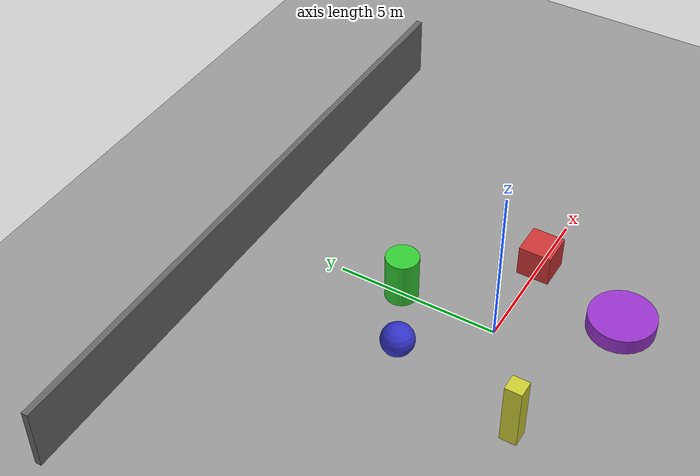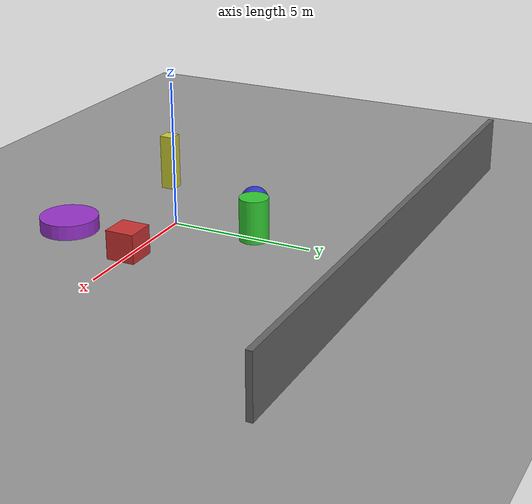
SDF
<?xml version="1.0" ?>
<sdf version="1.8">
  <world name="navigation_testbed">

    <!-- Physics Configuration -->
    <physics name="custom_physics" type="ode">
      <max_step_size>0.001</max_step_size>
      <real_time_factor>1.0</real_time_factor>
      <real_time_update_rate>1000</real_time_update_rate>
      <ode>
        <solver>
          <type>quick</type>
          <iters>50</iters>
          <sor>1.3</sor>
        </solver>
        <constraints>
          <cfm>0.0</cfm>
          <erp>0.2</erp>
          <contact_max_correcting_vel>100</contact_max_correcting_vel>
          <contact_surface_layer>0.001</contact_surface_layer>
        </constraints>
      </ode>
    </physics>

    <!-- Required System Plugins -->
    <plugin filename="gz-sim-physics-system"
            name="gz::sim::systems::Physics"/>
    <plugin filename="gz-sim-scene-broadcaster-system"
            name="gz::sim::systems::SceneBroadcaster"/>
    <plugin filename="gz-sim-user-commands-system"
            name="gz::sim::systems::UserCommands"/>
    <plugin filename="gz-sim-sensors-system"
            name="gz::sim::systems::Sensors">
      <render_engine>ogre2</render_engine>
    </plugin>

    <!-- Sun Light with Shadows -->
    <light type="directional" name="sun">
      <cast_shadows>true</cast_shadows>
      <pose>0 0 10 0 0 0</pose>
      <diffuse>0.9 0.9 0.9 1</diffuse>
      <specular>0.3 0.3 0.3 1</specular>
      <direction>-0.5 0.5 -1</direction>
      <attenuation>
        <range>1000</range>
        <constant>0.9</constant>
        <linear>0.01</linear>
        <quadratic>0.001</quadratic>
      </attenuation>
    </light>

    <!-- Ambient Fill Light -->
    <light type="point" name="ambient_fill">
      <cast_shadows>false</cast_shadows>
      <pose>0 0 8 0 0 0</pose>
      <diffuse>0.2 0.2 0.2 1</diffuse>
      <specular>0.0 0.0 0.0 1</specular>
      <attenuation>
        <range>30</range>
        <constant>0.5</constant>
        <linear>0.01</linear>
        <quadratic>0.001</quadratic>
      </attenuation>
    </light>

    <!-- Ground Plane -->
    <model name="ground_plane">
      <static>true</static>
      <link name="link">
        <collision name="collision">
          <geometry>
            <plane>
              <normal>0 0 1</normal>
              <size>50 50</size>
            </plane>
          </geometry>
          <surface>
            <friction>
              <ode>
                <mu>1.0</mu>
                <mu2>1.0</mu2>
              </ode>
            </friction>
            <bounce>
              <restitution_coefficient>0.1</restitution_coefficient>
              <threshold>0.01</threshold>
            </bounce>
          </surface>
        </collision>
        <visual name="visual">
          <geometry>
            <plane>
              <normal>0 0 1</normal>
              <size>50 50</size>
            </plane>
          </geometry>
          <material>
            <ambient>0.6 0.6 0.6 1</ambient>
            <diffuse>0.6 0.6 0.6 1</diffuse>
            <specular>0.1 0.1 0.1 1</specular>
          </material>
        </visual>
      </link>
    </model>

    <!-- Obstacle 1: Red Box -->
    <model name="obstacle_box_red">
      <static>true</static>
      <pose>3 0 0.5 0 0 0</pose>
      <link name="link">
        <collision name="collision">
          <geometry>
            <box><size>1 1 1</size></box>
          </geometry>
        </collision>
        <visual name="visual">
          <geometry>
            <box><size>1 1 1</size></box>
          </geometry>
          <material>
            <ambient>0.8 0.2 0.2 1</ambient>
            <diffuse>0.8 0.2 0.2 1</diffuse>
            <specular>0.5 0.5 0.5 1</specular>
          </material>
        </visual>
      </link>
    </model>

    <!-- Obstacle 2: Green Cylinder -->
    <model name="obstacle_cylinder_green">
      <static>true</static>
      <pose>0 3 0.75 0 0 0</pose>
      <link name="link">
        <collision name="collision">
          <geometry>
            <cylinder>
              <radius>0.5</radius>
              <length>1.5</length>
            </cylinder>
          </geometry>
        </collision>
        <visual name="visual">
          <geometry>
            <cylinder>
              <radius>0.5</radius>
              <length>1.5</length>
            </cylinder>
          </geometry>
          <material>
            <ambient>0.2 0.8 0.2 1</ambient>
            <diffuse>0.2 0.8 0.2 1</diffuse>
            <specular>0.5 0.5 0.5 1</specular>
          </material>
        </visual>
      </link>
    </model>

    <!-- Obstacle 3: Blue Sphere -->
    <model name="obstacle_sphere_blue">
      <static>true</static>
      <pose>-2 2 0.5 0 0 0</pose>
      <link name="link">
        <collision name="collision">
          <geometry>
            <sphere><radius>0.5</radius></sphere>
          </geometry>
        </collision>
        <visual name="visual">
          <geometry>
            <sphere><radius>0.5</radius></sphere>
          </geometry>
          <material>
            <ambient>0.2 0.2 0.8 1</ambient>
            <diffuse>0.2 0.2 0.8 1</diffuse>
            <specular>0.5 0.5 0.5 1</specular>
          </material>
        </visual>
      </link>
    </model>

    <!-- Obstacle 4: Yellow Box (Tall) -->
    <model name="obstacle_box_tall">
      <static>true</static>
      <pose>-3 -2 1 0 0 0</pose>
      <link name="link">
        <collision name="collision">
          <geometry>
            <box><size>0.5 0.5 2</size></box>
          </geometry>
        </collision>
        <visual name="visual">
          <geometry>
            <box><size>0.5 0.5 2</size></box>
          </geometry>
          <material>
            <ambient>0.8 0.8 0.2 1</ambient>
            <diffuse>0.8 0.8 0.2 1</diffuse>
            <specular>0.5 0.5 0.5 1</specular>
          </material>
        </visual>
      </link>
    </model>

    <!-- Obstacle 5: Purple Cylinder (Wide) -->
    <model name="obstacle_cylinder_wide">
      <static>true</static>
      <pose>2 -3 0.25 0 0 0</pose>
      <link name="link">
        <collision name="collision">
          <geometry>
            <cylinder>
              <radius>1.0</radius>
              <length>0.5</length>
            </cylinder>
          </geometry>
        </collision>
        <visual name="visual">
          <geometry>
            <cylinder>
              <radius>1.0</radius>
              <length>0.5</length>
            </cylinder>
          </geometry>
          <material>
            <ambient>0.6 0.2 0.8 1</ambient>
            <diffuse>0.6 0.2 0.8 1</diffuse>
            <specular>0.5 0.5 0.5 1</specular>
          </material>
        </visual>
      </link>
    </model>

    <!-- Wall Section (Boundary) -->
    <model name="wall_north">
      <static>true</static>
      <pose>0 8 1 0 0 0</pose>
      <link name="link">
        <collision name="collision">
          <geometry>
            <box><size>20 0.2 2</size></box>
          </geometry>
        </collision>
        <visual name="visual">
          <geometry>
            <box><size>20 0.2 2</size></box>
          </geometry>
          <material>
            <ambient>0.4 0.4 0.4 1</ambient>
            <diffuse>0.4 0.4 0.4 1</diffuse>
          </material>
        </visual>
      </link>
    </model>

  </world>
</sdf>
